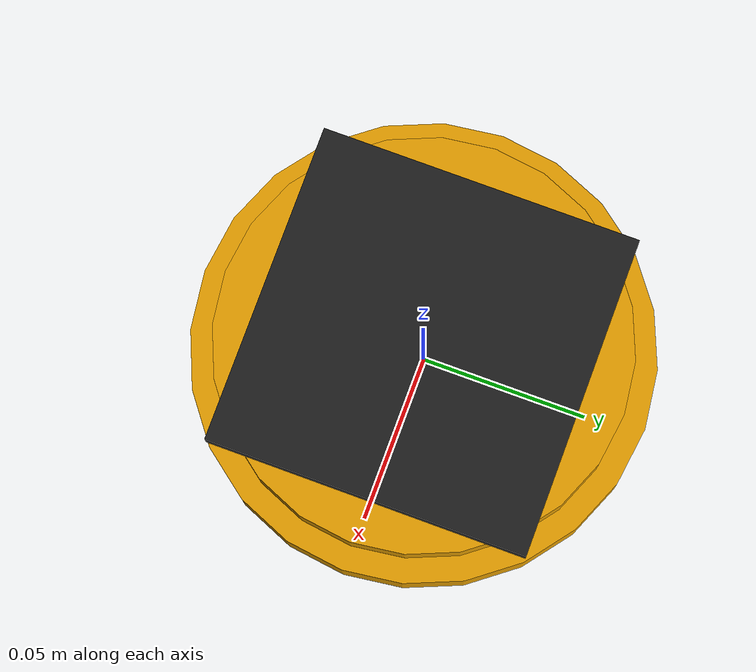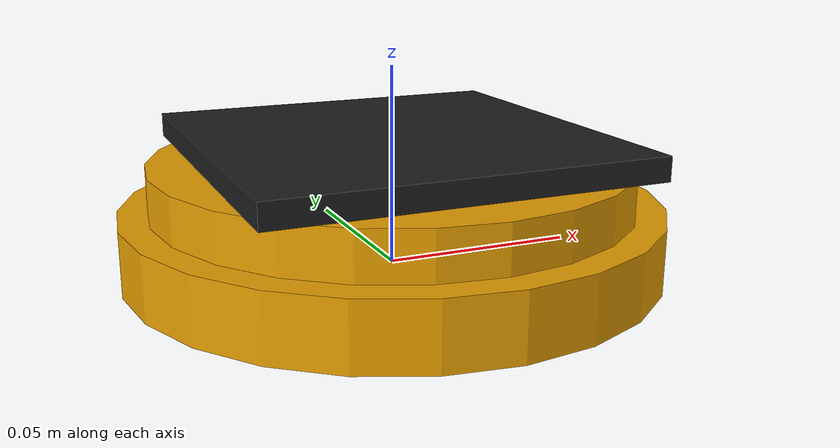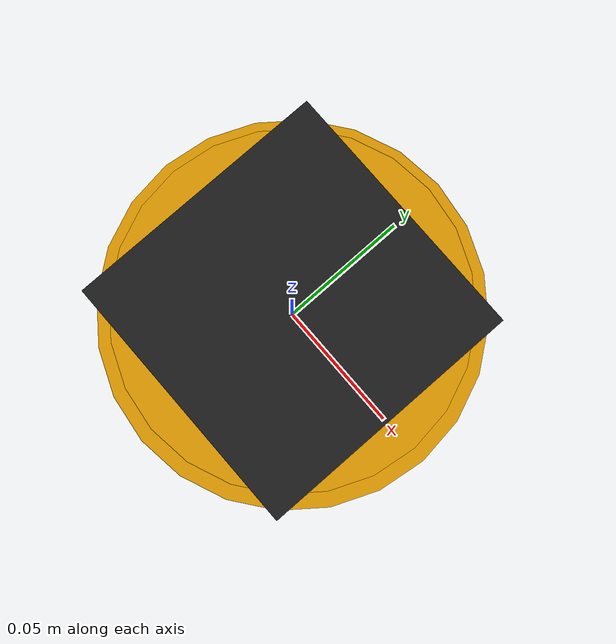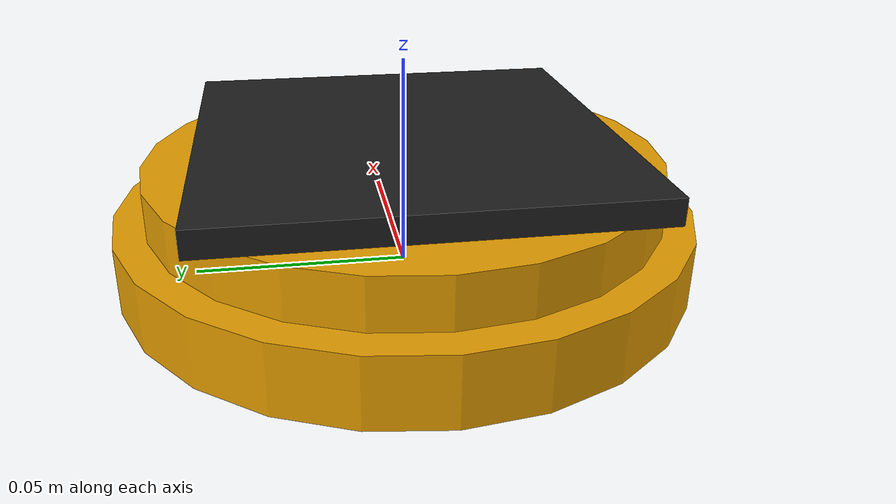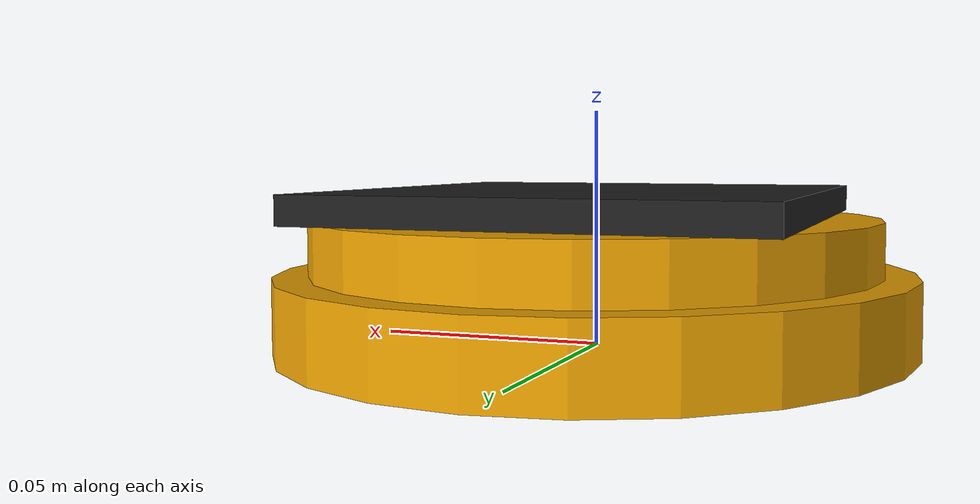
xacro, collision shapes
<?xml version="1.0"?>
<robot name="myrmex_3x3_board" xmlns:xacro="http://www.ros.org/wiki/xacro">

  <xacro:include filename="$(find myrmex_description)/models/myrmex_quick_mount.urdf.xacro" />
    <xacro:myrmex_quick_mount prefix=""/>
    <xacro:myrmex_tactile_markers parent="myrmex_quick_mount" prefix="" channel="myrmex">
      <origin xyz="0 0 0.0" rpy="0 0 0"/>
    </xacro:myrmex_tactile_markers>
    <gazebo>
      <plugin name="gazebo_hog" filename="libgazebo_ros_hand_of_god.so">
        <alwaysOn>true</alwaysOn>
        <robotNamespace></robotNamespace>
        <linkName>myrmex_quick_mount</linkName>
        <frameId>rig_myrmex_quick_mount</frameId>
        <kl>20</kl>
        <ka>20</ka>
      </plugin>
    </gazebo>
</robot>

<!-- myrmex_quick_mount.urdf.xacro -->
<robot name="myrmex_quick_mount" xmlns:xacro="http://www.ros.org/wiki/xacro">

  <xacro:macro name="myrmex_quick_mount" params="prefix:=''">
    <xacro:include filename="$(find myrmex_description)/models/myrmex_tactile_surface.urdf.xacro" />

    <xacro:property name="prefix_" value="${prefix + '_' if prefix else ''}" />
    <link name="${prefix_}myrmex_quick_mount">
       <inertial>
        <origin xyz="0 0 0.03" rpy="0 0 0" />
        <mass value="0.180" />
        <inertia ixx="0.0002" ixy="0.0" ixz="0.0"
        iyy="0.0002" iyz="0.0" izz="0.0001" />
      </inertial>
      <visual>
        <origin xyz="0 0 0" rpy="0 0 0"/>
        <geometry>
          <mesh scale="0.001 0.001 0.001"
                filename="package://myrmex_description/models/meshes/myrmex_quick_mount.dae"/>
        </geometry>
      </visual>
      <collision>
        <origin xyz="0 0 0.00797" rpy="0 0 0"/>
        <geometry>
          <cylinder radius="0.06725" length="0.01584"/>
        </geometry>
      </collision>
      <collision>
        <origin xyz="0 0 0.02159" rpy="0 0 0"/>
        <geometry>
          <cylinder radius="0.060" length="0.0115"/>
        </geometry>
      </collision>
    </link>

    <xacro:myrmex_tactile_surface prefix="${prefix}" parent="${prefix_}myrmex_quick_mount"/>
  </xacro:macro>

</robot>

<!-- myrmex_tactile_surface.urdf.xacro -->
<robot name="myrmex_quick_mount" xmlns:xacro="http://www.ros.org/wiki/xacro">

  <xacro:macro name="myrmex_tactile_surface" params="prefix:='' parent size_x:=1 size_y:=1 foam_size_x:=0.095 foam_size_y:=0.095 ">
    <xacro:property name="prefix_" value="${prefix + '_' if prefix else ''}" />

    <joint name="${prefix_}myrmex_bumper_joint" type="prismatic">
      <parent link="${parent}" />
      <child link="${prefix_}myrmex_foam" />
      <origin xyz="0 0 0.03034" rpy="0 0 0"/>
      <axis xyz="0 0 1" />
       <limit lower="0.0" upper="0.001" effort="1" velocity="0.1" />
    </joint>

    <link name="${prefix_}myrmex_foam">
      <inertial>
        <origin xyz="0 0 0.0" rpy="0 0 0" />
        <mass value="${0.005*size_x*size_y}" />
        <inertia ixx="0.000002" ixy="0.0" ixz="0.0"
        iyy="0.000002" iyz="0.0" izz="0.000001" />
      </inertial>
      <visual>
        <origin xyz="0 0 0" rpy="0 0 0"/>
        <geometry>
          <xacro:if value="${1 if (size_x==1 and size_y==1) else 0}" >
            <xacro:property name="scale_x" value="${foam_size_x/0.095}" />
            <xacro:property name="scale_y" value="${foam_size_y/0.095}" />
            <mesh scale="${scale_x} ${scale_y} 1.0"
                filename="package://myrmex_description/models/meshes/myrmex_foam.stl"/>
          </xacro:if>
          <xacro:unless value="${1 if (size_x==1 and size_y==1) else 0}" >
            <box size="${foam_size_x*size_x} ${foam_size_y*size_y} 0.006"/>
          </xacro:unless>
        </geometry>
      </visual>
      <collision name="${prefix_}myrmex_foam">
        <origin xyz="0 0 0" rpy="0 0 0"/>
        <geometry>
          <box size="${foam_size_x*size_x} ${foam_size_y*size_y} 0.006"/>
        </geometry>
      </collision>
    </link>

    <gazebo reference="${prefix_}myrmex_foam">
      <material>Gazebo/Black</material>
      <sensor type="contact" name="${prefix_}myrmex_sensor">
        <always_on>1</always_on>
        <update_rate>1000.0</update_rate>
        <contact>
          <collision>${prefix_}myrmex_foam_collision</collision>
          <topic>${prefix_}myrmex_foam_collision</topic>
        </contact>
        <plugin name="${prefix_}myrmex_gazebo_ros_tactile_controller" filename="libgazebo_ros_tactile.so">
          <alwaysOn>true</alwaysOn>
          <robotNamespace>${prefix}</robotNamespace>
          <frameName>${prefix_}myrmex_foam</frameName>
          <updateRate>100.0</updateRate>
          <bumperTopicName>contacts/${prefix_}myrmex</bumperTopicName>
          <tactileTopicName>tactile_states/${prefix_}myrmex</tactileTopicName>
        </plugin>
      </sensor>
    </gazebo>
  </xacro:macro>

  <xacro:macro name="myrmex_tactile_markers" params="parent channel name:='myrmex_sensor' prefix:='' size_x:=1 size_y:=1 *origin">
    <xacro:property name="cell_size" value="0.005" />
    <xacro:property name="cell_spacing" value="0.005" />
    <xacro:property name="myrmex_size_x" value="${16*size_x}" />
    <xacro:property name="myrmex_size_y" value="${16*size_y}" />
    <xacro:property name="prefix_" value="${prefix + '_' if prefix else ''}" />
    <!-- tactile marker mapping description -->
    <sensor name="${prefix_}${name}" update_rate="100">
      <parent link="${parent}"/>
      <xacro:insert_block name="origin"/>
      <tactile channel="${prefix_}${channel}">
        <array rows="${myrmex_size_x}" cols="${myrmex_size_y}"
            order="row-major" size="${cell_size} ${cell_size}"
            offset="${cell_spacing * (myrmex_size_x -1)/2.0} ${cell_spacing * (myrmex_size_y -1)/2.0}">
        </array>
      </tactile>
    </sensor>
  </xacro:macro>
</robot>
